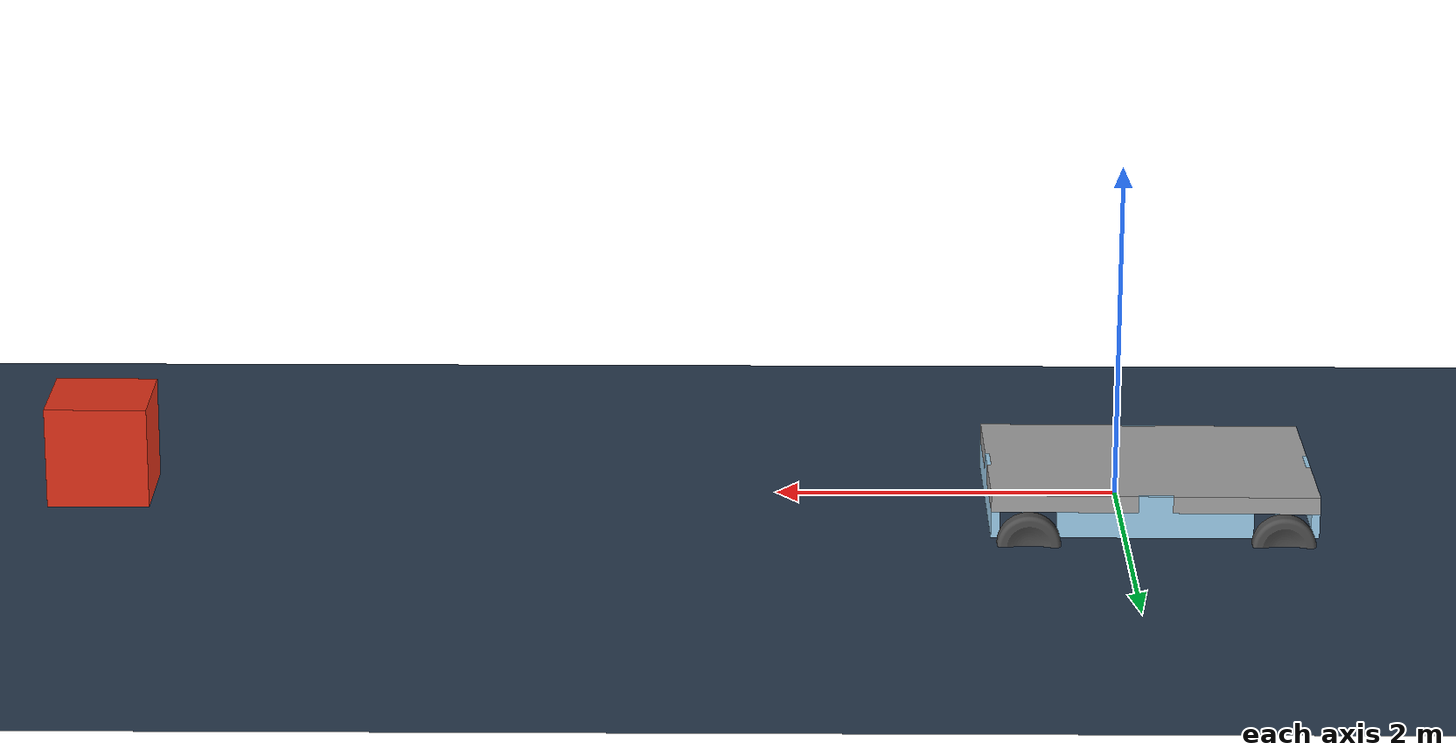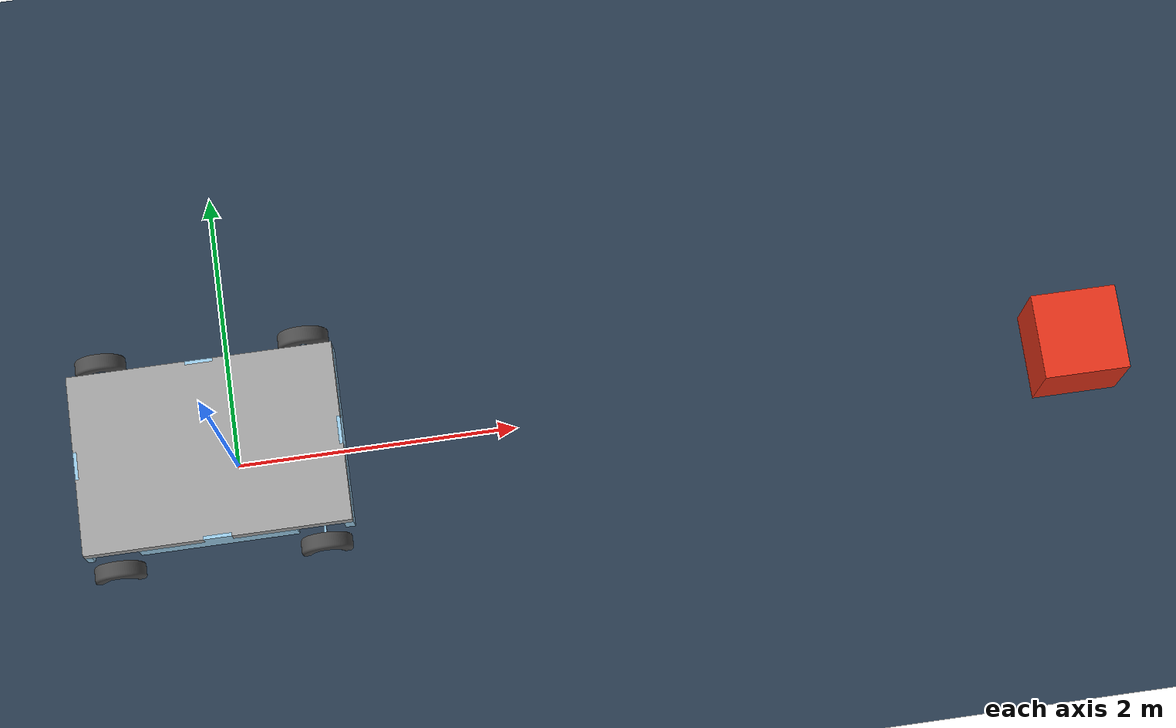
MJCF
<mujoco model="train_scene">
  <include file="robot.xml"/>
  <visual>
    <global offwidth="1280" offheight="720"/>
    <headlight diffuse="0.6 0.6 0.6" ambient="0.3 0.3 0.3"/>
  </visual>
  <asset>
    <texture name="grid" type="2d" builtin="checker" rgb1="0.2 0.3 0.4" rgb2="0.12 0.17 0.23"
             width="512" height="512"/>
    <material name="grid" texture="grid" texrepeat="6 6" reflectance="0.1"/>
  </asset>
  <worldbody>
    <light pos="0 0 6" dir="0 0 -1" diffuse="0.8 0.8 0.8"/>
    <geom name="floor" type="plane" size="40 40 0.1" material="grid"/>
    <!-- target cube (mocap; env randomizes its position). Sized for the ~1.5 m robot. -->
    <body name="target" pos="6 0 0.3" mocap="true">
      <geom name="target" type="box" size="0.3 0.3 0.3" rgba="0.9 0.2 0.1 1" contype="0" conaffinity="0"/>
    </body>
  </worldbody>
</mujoco>

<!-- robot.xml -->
<!-- Generated using onshape-to-robot -->
<!-- Onshape https://cad.onshape.com/documents/cf51a70103db432769543c51/w/7e018cacb15a911b2256f57c/e/bcb27ac4664ef37f7c51214e -->
<mujoco model="my_robot">
  <compiler angle="radian" meshdir="assets" autolimits="true"/>
  <default>
    <default class="my_robot">
      <joint frictionloss="0.1" armature="0.005"/>
      <position kp="50" dampratio="1"/>
      <default class="visual">
        <geom type="mesh" contype="0" conaffinity="0" group="2"/>
      </default>
      <default class="collision">
        <!-- overdamped contact (dampratio 2 = no bounce) + high friction for grip -->
        <geom group="3" condim="3" friction="1.4 0.01 0.001" solref="0.02 1"/>
      </default>
    </default>
  </default>
  <worldbody>
    <!-- Link part_1 -->
    <body name="part_1" pos="0 0 0" quat="1 0 0 0" childclass="my_robot">
      <freejoint name="part_1_freejoint"/>
      <inertial pos="-0.199094 0.105186 0.0371702" mass="30.0" fullinertia="5.99 11.65 15.97 0.00495 -0.0971 0.0000285"/>
      <!-- Part part_1 -->
      <geom type="mesh" class="visual" pos="-0.175807 0.105186 -0.165337" quat="0.707104 0.00203775 -0.00203775 -0.707104" mesh="part_1" material="part_1_material"/>
      <geom type="mesh" class="collision" pos="-0.175807 0.105186 -0.165337" quat="0.707104 0.00203775 -0.00203775 -0.707104" mesh="part_1" material="part_1_material"/>
      <!-- Part part_2 -->
      <geom type="mesh" class="visual" pos="-0.175807 0.105186 -0.165337" quat="0.707104 0.00203775 -0.00203775 -0.707104" mesh="part_2" material="part_2_material"/>
      <geom type="mesh" class="collision" pos="-0.175807 0.105186 -0.165337" quat="0.707104 0.00203775 -0.00203775 -0.707104" mesh="part_2" material="part_2_material"/>
      <site name="lidar" pos="-0.178 0.105 0.42" size="0.03" rgba="1 0.2 0.2 1" group="4"/>
      <!-- MANUAL: forward-facing camera mount (front edge, looks +x = driving direction).
           Wired into the observation in the camera round. -->
      <camera name="robot_cam" mode="fixed" pos="0.70 0.105 0.14" xyaxes="0 -1 0 0 0 1" fovy="70"/>
      <!-- Link rim -->
      <body name="rim" pos="0.558316 0.895186 -0.0111037" quat="0.707104 0.707104 -0.00203775 0.00203775">
        <!-- Joint from part_1 to rim -->
        <joint axis="0 0 1" name="wheel_fl"/>
        <inertial pos="0 -0 0.0323512" mass="0.875" fullinertia="0.006697 0.006697 0.011573 -0 0 0"/>
        <!-- Part rim -->
        <geom type="mesh" class="visual" pos="0 -0 0.0659467" quat="0.707107 0.707107 -0 -0" mesh="rim" material="rim_material"/>
        <geom type="cylinder" class="collision" pos="0 0 0.0659467" size="0.184 0.0615"/>
      </body>
      <!-- Link rim_2 -->
      <body name="rim_2" pos="-0.91166 -0.684814 -0.0195762" quat="0.698401 -0.698401 -0.110616 -0.110616">
        <!-- Joint from part_1 to rim_2 -->
        <joint axis="0 0 1" name="wheel_rr"/>
        <inertial pos="-0 0 0.0323512" mass="0.875" fullinertia="0.006697 0.006697 0.011573 -0 0 0"/>
        <!-- Part rim_2 -->
        <geom type="mesh" class="visual" pos="-0 0 0.0659467" quat="0.707107 0.707107 -0 0" mesh="rim" material="rim_material"/>
        <geom type="cylinder" class="collision" pos="0 0 0.0659467" size="0.184 0.0615"/>
      </body>
      <!-- Link rim_3 -->
      <body name="rim_3" pos="-0.91166 0.895186 -0.0195762" quat="0.707104 0.707104 -0.00203775 0.00203775">
        <!-- Joint from part_1 to rim_3 -->
        <joint axis="0 0 1" name="wheel_rl"/>
        <inertial pos="0 -0 0.0323512" mass="0.875" fullinertia="0.006697 0.006697 0.011573 0 0 -0"/>
        <!-- Part rim_3 -->
        <geom type="mesh" class="visual" pos="0 -0 0.0659467" quat="0.687091 0.687091 -0.167052 -0.167052" mesh="rim" material="rim_material"/>
        <geom type="cylinder" class="collision" pos="0 0 0.0659467" size="0.184 0.0615"/>
      </body>
      <!-- Link rim_4 -->
      <body name="rim_4" pos="0.558316 -0.684814 -0.0111037" quat="0.707104 -0.707104 -0.00203775 -0.00203775">
        <!-- Joint from part_1 to rim_4 -->
        <joint axis="0 0 1" name="wheel_fr"/>
        <inertial pos="-0 0 0.0323512" mass="0.875" fullinertia="0.006697 0.006697 0.011573 0 -0 0"/>
        <!-- Part rim_4 -->
        <geom type="mesh" class="visual" pos="-0 0 0.0659467" quat="0.640518 0.640518 -0.299561 -0.299561" mesh="rim" material="rim_material"/>
        <geom type="cylinder" class="collision" pos="0 0 0.0659467" size="0.184 0.0615"/>
      </body>
    </body>
  </worldbody>
  <asset>
    <mesh file="part_2.stl"/>
    <mesh file="rim.stl"/>
    <mesh file="part_1.stl"/>
    <material name="part_1_material" rgba="0.615686 0.811765 0.929412 1"/>
    <material name="part_2_material" rgba="0.647059 0.647059 0.647059 1"/>
    <material name="rim_material" rgba="0.301961 0.301961 0.301961 1"/>
  </asset>
  <actuator>
    <velocity name="wheel_fl" joint="wheel_fl" kv="60" ctrlrange="-12 12" forcerange="-400 400"/>
    <velocity name="wheel_rr" joint="wheel_rr" kv="60" ctrlrange="-12 12" forcerange="-400 400"/>
    <velocity name="wheel_rl" joint="wheel_rl" kv="60" ctrlrange="-12 12" forcerange="-400 400"/>
    <velocity name="wheel_fr" joint="wheel_fr" kv="60" ctrlrange="-12 12" forcerange="-400 400"/>
  </actuator>
  <equality/>
</mujoco>
